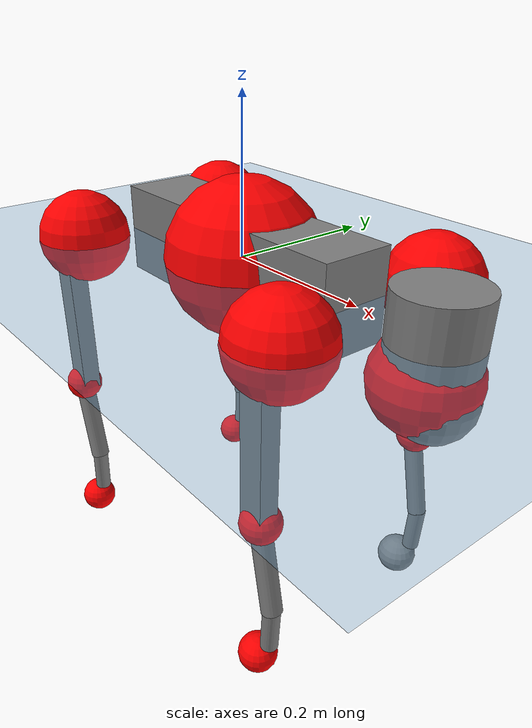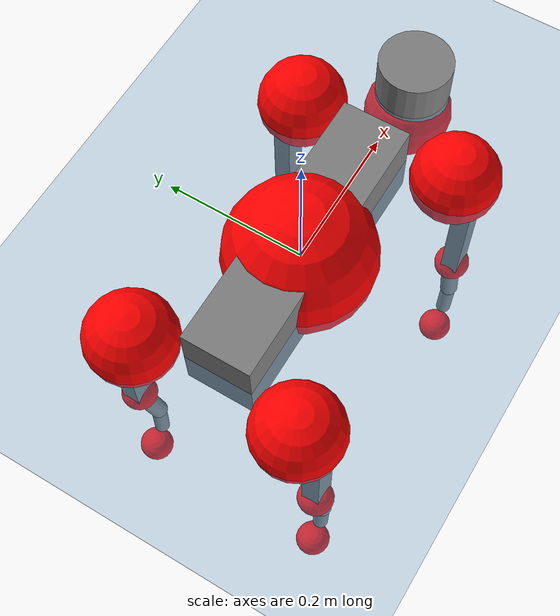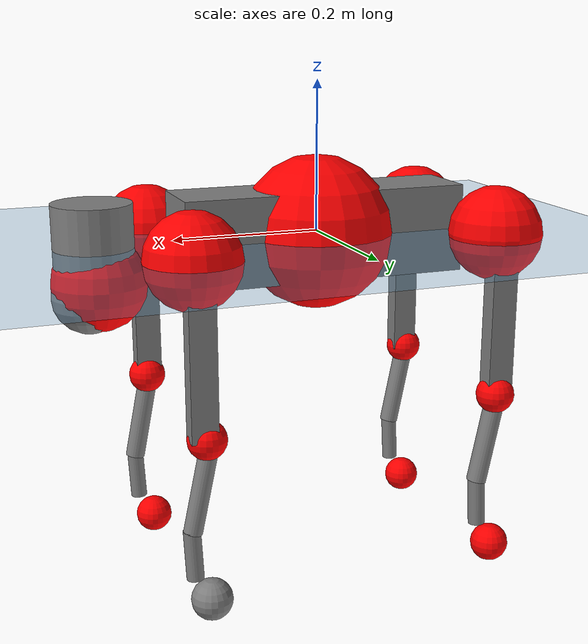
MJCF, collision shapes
<mujoco model="go2">
  <compiler angle="radian" assetdir="assets" balanceinertia="true" inertiafromgeom="false"/>

  <option timestep="0.005" density="1.2" viscosity="2e-05"/>

  <size nkey="1"/>

  <visual>
    <quality shadowsize="8192"/>
    <map shadowclip="0.5"/>
  </visual>

  <default>
    <default class="/">
      <geom contype="0" conaffinity="0" group="1" solref="-1000 -80"/>
      <site size="0.01 0.005 0.005" group="5"/>
      <general forcelimited="true" biastype="affine" gainprm="20" biasprm="0 -20 -0.5"/>
      <default class="go2">
        <joint armature="0.01" damping="0.01" frictionloss="0.2"/>
        <geom condim="1" margin="0.001"/>
        <default class="visual">
          <geom type="mesh" group="2"/>
        </default>
        <default class="collision">
          <geom group="3"/>
          <default class="foot">
            <geom size="0.022 0 0" condim="6" priority="1" friction="0.8 0.02 0.01" solimp="0.015 1 0.022"/>
          </default>
        </default>
        <default class="reward_collision_sphere">
          <geom group="5" rgba="1 0 0 1"/>
        </default>
      </default>
    </default>
  </default>

  <asset>
    <texture type="skybox" colorspace="auto" name="//unnamed_texture_0" builtin="gradient" rgb1="0.95 0.95 0.95" rgb2="0.95 0.95 0.95" width="100" height="600"/>
    <texture type="2d" colorspace="auto" name="texplane" builtin="checker" rgb1="0.345 0.575 0.748" rgb2="0.345 0.575 0.748" markrgb="1 1 1" width="512" height="512"/>
    <material name="MatPlane" class="/" texture="texplane" texuniform="true" texrepeat="2 2" specular="0.9"/>
    <material name="metal" class="/" rgba="0.9 0.95 0.95 1"/>
    <material name="black" class="/" rgba="0 0 0 1"/>
    <material name="white" class="/"/>
    <material name="gray" class="/" rgba="0.671705 0.692426 0.77427 1"/>
    <mesh name="base_0" class="/" file="base_0.obj"/>
    <mesh name="base_1" class="/" file="base_1.obj"/>
    <mesh name="base_2" class="/" file="base_2.obj"/>
    <mesh name="base_3" class="/" file="base_3.obj"/>
    <mesh name="base_4" class="/" file="base_4.obj"/>
    <mesh name="hip_0" class="/" file="hip_0.obj"/>
    <mesh name="hip_1" class="/" file="hip_1.obj"/>
    <mesh name="thigh_0" class="/" file="thigh_0.obj"/>
    <mesh name="thigh_1" class="/" file="thigh_1.obj"/>
    <mesh name="thigh_mirror_0" class="/" file="thigh_mirror_0.obj"/>
    <mesh name="thigh_mirror_1" class="/" file="thigh_mirror_1.obj"/>
    <mesh name="calf_0" class="/" file="calf_0.obj"/>
    <mesh name="calf_1" class="/" file="calf_1.obj"/>
    <mesh name="calf_mirror_0" class="/" file="calf_mirror_0.obj"/>
    <mesh name="calf_mirror_1" class="/" file="calf_mirror_1.obj"/>
    <mesh name="foot" class="/" file="foot.obj"/>
  </asset>

  <worldbody>
    <geom name="floor" class="/" size="100 100 0.125" type="plane" group="0" material="MatPlane"/>
    <light name="toplight_shadow" class="/" pos="0 0 5" dir="0.0990148 0.0990148 -0.990148" type="directional" ambient="0.04 0.04 0.04" diffuse="0.55 0.55 0.55" specular="0.12 0.12 0.12"/>
    <light name="toplight_fill" class="/" pos="0 0 5" dir="0.0990148 0.0990148 -0.990148" type="directional" castshadow="false" ambient="0.04 0.04 0.04" diffuse="0.3 0.3 0.3" specular="0.08 0.08 0.08"/>
    <body name="trunk" childclass="go2" pos="0.00157042 0.00232013 -0.000504685" quat="1 -0.00018332 3.86048e-05 0.000304965">
      <inertial pos="0.0218991 1.89224e-05 -0.00404375" quat="-0.00327095 0.706783 -0.0116482 0.707327" mass="7.91326" diaginertia="0.136303 0.102753 0.0275256"/>
      <joint name="//unnamed_joint_0" type="free" armature="0" damping="0" frictionloss="0"/>
      <geom name="//unnamed_geom_1" class="visual" material="black" mesh="base_0"/>
      <geom name="//unnamed_geom_2" class="visual" material="black" mesh="base_1"/>
      <geom name="//unnamed_geom_3" class="visual" material="black" mesh="base_2"/>
      <geom name="//unnamed_geom_4" class="visual" material="white" mesh="base_3"/>
      <geom name="//unnamed_geom_5" class="visual" material="gray" mesh="base_4"/>
      <geom name="trunk_1" class="collision" size="0.194741 0.0484005 0.0590123" type="box"/>
      <geom name="trunk_2" class="collision" size="0.0517652 0.0465887" pos="0.302117 0 0.0103613" type="cylinder"/>
      <geom name="trunk_3" class="collision" size="0.0486593" pos="0.310598 0 -0.0621677"/>
      <geom name="//unnamed_geom_9" class="reward_collision_sphere" size="0.10353"/>
      <geom name="//unnamed_geom_10" class="reward_collision_sphere" size="0.0621182" pos="0.296817 0 -0.0466258"/>
      <site name="imu" pos="-0.0268516 0.0317267 0.0353081" size="0.010353"/>
      <camera name="track" pos="0 -2.01945 0" quat="0.707107 0.707107 0 0" mode="trackcom"/>
      <camera name="ego_camera" pos="0.330739 0 0.0466258" quat="-0.5 -0.5 0.5 0.5"/>
      <body name="FL_hip" pos="0.204758 0.047584 -0.000264555" quat="0.999996 0.000871793 -0.00044003 -0.00278616">
        <inertial pos="-0.00613269 0.00376827 -0.00245124" quat="0.493453 0.499702 0.512422 0.494192" mass="0.705849" diaginertia="0.00111877 0.000583014 0.000542355"/>
        <joint name="FL_hip_joint" pos="0 0 0" axis="0.999978 -0.00198599 0.00630217" range="-1.13523 1.06505" armature="0.00918798" damping="0.0287313" frictionloss="0.182646"/>
        <geom name="//unnamed_geom_11" class="visual" material="metal" mesh="hip_0"/>
        <geom name="//unnamed_geom_12" class="visual" material="gray" mesh="hip_1"/>
        <geom name="//unnamed_geom_13" class="collision" size="0.047624 0.0207061" pos="0 0.0807778 0" quat="0.707107 0.707107 0 0" type="cylinder"/>
        <geom name="//unnamed_geom_14" class="reward_collision_sphere" size="0.0621182" pos="0 0.0706806 0"/>
        <body name="FL_thigh" pos="-0.000282631 0.0951473 -0.000759062" quat="1 -0.000218222 -0.000255107 0.000155475">
          <inertial pos="-0.00422352 -0.0179212 -0.0275025" quat="0.825217 0.0782519 -0.0191771 0.55904" mass="1.25716" diaginertia="0.00832249 0.0062083 0.00109691"/>
          <joint name="FL_thigh_joint" pos="0 0 0" axis="0.0175803 0.999761 0.0130187" stiffness="0.00229157" range="-1.58582 3.37265" armature="0.0102714" damping="0.0397038" frictionloss="0.205281"/>
          <geom name="//unnamed_geom_15" class="visual" material="metal" mesh="thigh_0"/>
          <geom name="//unnamed_geom_16" class="visual" material="gray" mesh="thigh_1"/>
          <geom name="//unnamed_geom_17" class="collision" size="0.11026 0.0126825 0.0176002" pos="0 0 -0.110348" quat="0.707107 0 0.707107 0" type="box"/>
          <body name="FL_calf" pos="-0.00663713 -0.00516413 -0.222221" quat="1 -0.000154835 -0.000434508 0.000185988">
            <inertial pos="0.0044605 -0.000624342 -0.147607" quat="0.712831 -0.000201534 -0.00490788 0.701318" mass="0.253292" diaginertia="0.00196456 0.00149189 6.30036e-05"/>
            <joint name="FL_calf_joint" pos="0 0 0" axis="-0.00579969 0.99997 0.00517845" stiffness="0.0328378" range="-2.74487 -0.763299" armature="0.0108039" damping="0" frictionloss="0.184432"/>
            <geom name="//unnamed_geom_18" class="visual" material="gray" mesh="calf_0"/>
            <geom name="//unnamed_geom_19" class="visual" material="black" mesh="calf_1"/>
            <geom name="FL_calf0" class="collision" size="0.0124236 0.0621182" pos="0.00848048 0 -0.0621677" quat="0.994493 0 -0.104807 0" type="cylinder"/>
            <geom name="//unnamed_geom_21" class="collision" size="0.0113883 0.0336474" pos="0.0212012 0 -0.153347" quat="0.999688 0 0.0249974 0" type="cylinder"/>
            <geom name="//unnamed_geom_22" class="visual" pos="0 0 -0.220695" quat="1 0 0 0" material="black" mesh="foot"/>
            <geom name="FL_foot" class="foot" size="0.0274812" pos="-0.00212012 0 -0.220695"/>
            <geom name="//unnamed_geom_24" class="reward_collision_sphere" size="0.0258826"/>
            <geom name="//unnamed_geom_25" class="reward_collision_sphere" size="0.0258826" pos="-0.00212012 0 -0.220695"/>
            <site name="FL_foot" class="foot" pos="-0.00212012 0 -0.220695" size="0.010353"/>
          </body>
        </body>
      </body>
      <body name="FR_hip" pos="0.205509 -0.0464066 -0.00496097" quat="1 0.000447522 0.000209472 0.000115266">
        <inertial pos="-0.00799456 -0.000734932 0.000638234" quat="0.496455 0.489893 0.515856 0.497423" mass="0.712079" diaginertia="0.00110441 0.000595846 0.000553653"/>
        <joint name="FR_hip_joint" pos="0 0 0" axis="0.999999 0.00163863 -6.90019e-05" stiffness="0.0154438" range="-1.08443 1.08001" armature="0.0104184" damping="0.00220042" frictionloss="0.226407"/>
        <geom name="//unnamed_geom_26" class="visual" pos="0 -2.30035e-10 -9.86666e-09" quat="4.63268e-05 1 0 0" material="metal" mesh="hip_0"/>
        <geom name="//unnamed_geom_27" class="visual" pos="0 -3.72914e-10 2.4404e-08" quat="4.63268e-05 1 0 0" material="gray" mesh="hip_1"/>
        <geom name="//unnamed_geom_28" class="collision" size="0.047624 0.0207061" pos="0 -0.0807778 0" quat="0.707107 0.707107 0 0" type="cylinder"/>
        <geom name="//unnamed_geom_29" class="reward_collision_sphere" size="0.0621182" pos="0 -0.0706806 0"/>
        <body name="FR_thigh" pos="0.000543631 -0.0964262 0.00270863" quat="0.999999 0.000474426 -0.000238994 -0.000911031">
          <inertial pos="-0.00455272 0.0229566 -0.0287227" quat="0.539347 -0.0042335 0.0606322 0.839888" mass="1.23107" diaginertia="0.00744811 0.00577571 0.000988828"/>
          <joint name="FR_thigh_joint" pos="0 0 0" axis="0.00197708 -0.999988 -0.00441091" range="-3.39308 1.5203" armature="0.0115796" damping="0.0190114" frictionloss="0.232205"/>
          <geom name="//unnamed_geom_30" class="visual" material="metal" mesh="thigh_mirror_0"/>
          <geom name="//unnamed_geom_31" class="visual" material="gray" mesh="thigh_mirror_1"/>
          <geom name="//unnamed_geom_32" class="collision" size="0.11026 0.0126825 0.0176002" pos="0 0 -0.110348" quat="0.707107 0 0.707107 0" type="box"/>
          <body name="FR_calf" pos="0.00173852 0.00194677 -0.220707" quat="1 -5.66153e-05 7.2354e-05 6.5179e-05">
            <inertial pos="0.00914111 0.000743652 -0.153164" quat="0.703429 -0.00411064 0.00230963 0.71075" mass="0.298505" diaginertia="0.00219654 0.00153617 7.23807e-05"/>
            <joint name="FR_calf_joint" pos="0 0 0" axis="0.0103974 -0.999944 0.00207315" range="0.83919 2.7132" armature="0.00924933" damping="0.00592313" frictionloss="0.206437"/>
            <geom name="//unnamed_geom_33" class="visual" material="gray" mesh="calf_mirror_0"/>
            <geom name="//unnamed_geom_34" class="visual" material="black" mesh="calf_mirror_1"/>
            <geom name="FR_calf0" class="collision" size="0.013459 0.0621182" pos="0.0106006 0 -0.0621677" quat="0.995004 0 -0.0998334 0" type="cylinder"/>
            <geom name="//unnamed_geom_36" class="collision" size="0.0113883 0.0336474" pos="0.0212012 0 -0.153347" quat="0.999688 0 0.0249974 0" type="cylinder"/>
            <geom name="//unnamed_geom_37" class="visual" pos="0 0 -0.220695" quat="1 0 0 0" material="black" mesh="foot"/>
            <geom name="FR_foot" class="foot" size="0.0197512" pos="-0.00212012 0 -0.220695"/>
            <geom name="//unnamed_geom_39" class="reward_collision_sphere" size="0.0258826"/>
            <geom name="//unnamed_geom_40" class="reward_collision_sphere" size="0.0258826" pos="-0.00212012 0 -0.220695"/>
            <site name="FR_foot" class="foot" pos="-0.00212012 0 -0.220695" size="0.010353"/>
          </body>
        </body>
      </body>
      <body name="RL_hip" pos="-0.207945 0.0458743 0.00510398" quat="1 -0.000120588 -5.28117e-05 -4.69686e-06">
        <inertial pos="0.00540092 0.000135907 0.00491915" quat="0.514048 0.492616 0.492432 0.500595" mass="0.692502" diaginertia="0.00110053 0.000616962 0.000569394"/>
        <joint name="RL_hip_joint" pos="0 0 0" axis="-0.999971 -0.00750816 -0.00132051" stiffness="0.0113226" range="-1.16608 0.964321" armature="0.0103839" damping="0.0152008" frictionloss="0.164007"/>
        <geom name="//unnamed_geom_41" class="visual" pos="-2.08483e-10 0 -4.08674e-08" quat="4.63268e-05 0 1 0" material="metal" mesh="hip_0"/>
        <geom name="//unnamed_geom_42" class="visual" pos="-3.37975e-10 0 -3.62436e-08" quat="4.63268e-05 0 1 0" material="gray" mesh="hip_1"/>
        <geom name="//unnamed_geom_43" class="collision" size="0.047624 0.0207061" pos="0 0.0807778 0" quat="0.707107 0.707107 0 0" type="cylinder"/>
        <geom name="//unnamed_geom_44" class="reward_collision_sphere" size="0.0621182" pos="0 0.0706806 0"/>
        <body name="RL_thigh" pos="0.000713678 0.0929802 0.00102352" quat="1 -2.23699e-05 -1.91648e-05 -3.1614e-05">
          <inertial pos="-0.000130249 -0.0204461 -0.0276299" quat="0.819956 0.0957957 -0.0141449 0.564176" mass="1.25902" diaginertia="0.00858389 0.00626797 0.00112388"/>
          <joint name="RL_thigh_joint" pos="0 0 0" axis="-0.0164272 0.999844 -0.00650996" range="-0.440807 4.49048" armature="0.0112715" damping="0.0106269" frictionloss="0.208433"/>
          <geom name="//unnamed_geom_45" class="visual" material="metal" mesh="thigh_0"/>
          <geom name="//unnamed_geom_46" class="visual" material="gray" mesh="thigh_1"/>
          <geom name="//unnamed_geom_47" class="collision" size="0.11026 0.0126825 0.0176002" pos="0 0 -0.110348" quat="0.707107 0 0.707107 0" type="box"/>
          <body name="RL_calf" pos="0.000959979 0.000807498 -0.218855" quat="1 0.000277687 -0.000177858 -0.000212672">
            <inertial pos="0.00655365 -0.000236052 -0.147572" quat="0.709029 0.0073751 -0.0161833 0.704955" mass="0.271717" diaginertia="0.0019944 0.00154787 6.14167e-05"/>
            <joint name="RL_calf_joint" pos="0 0 0" axis="4.31355e-05 1 -0.000102745" stiffness="0.0327802" range="-2.68556 -0.834003" armature="0.011246" damping="0.000494805" frictionloss="0.204706"/>
            <geom name="//unnamed_geom_48" class="visual" material="gray" mesh="calf_0"/>
            <geom name="//unnamed_geom_49" class="visual" material="black" mesh="calf_1"/>
            <geom name="RL_calf0" class="collision" size="0.013459 0.0621182" pos="0.0106006 0 -0.0621677" quat="0.995004 0 -0.0998334 0" type="cylinder"/>
            <geom name="//unnamed_geom_51" class="collision" size="0.0113883 0.0336474" pos="0.0212012 0 -0.153347" quat="0.999688 0 0.0249974 0" type="cylinder"/>
            <geom name="//unnamed_geom_52" class="visual" pos="0 0 -0.220695" quat="1 0 0 0" material="black" mesh="foot"/>
            <geom name="RL_foot" class="foot" size="0.0234395" pos="-0.00212012 0 -0.220695"/>
            <geom name="//unnamed_geom_54" class="reward_collision_sphere" size="0.0258826"/>
            <geom name="//unnamed_geom_55" class="reward_collision_sphere" size="0.0258826" pos="-0.00212012 0 -0.220695"/>
            <site name="RL_foot" class="foot" pos="-0.00212012 0 -0.220695" size="0.010353"/>
          </body>
        </body>
      </body>
      <body name="RR_hip" pos="-0.205375 -0.0491905 -0.000888136" quat="1 0.000831302 0.000201212 1.47495e-05">
        <inertial pos="0.00613693 -0.00578105 0.00145715" quat="0.499477 0.496935 0.498394 0.505154" mass="0.817319" diaginertia="0.00122994 0.000649943 0.000614892"/>
        <joint name="RR_hip_joint" pos="0 0 0" axis="-0.999981 0.00430268 0.00430643" range="-1.01706 1.10271" armature="0.0102517" damping="0.0319726" frictionloss="0.224771"/>
        <geom name="//unnamed_geom_56" class="visual" pos="2.0674e-10 -2.30035e-10 -3.10007e-08" quat="2.14617e-09 4.63268e-05 4.63268e-05 -1" material="metal" mesh="hip_0"/>
        <geom name="//unnamed_geom_57" class="visual" pos="3.42285e-10 -3.72914e-10 -6.06476e-08" quat="2.14617e-09 4.63268e-05 4.63268e-05 -1" material="gray" mesh="hip_1"/>
        <geom name="//unnamed_geom_58" class="collision" size="0.047624 0.0207061" pos="0 -0.0807778 0" quat="0.707107 0.707107 0 0" type="cylinder"/>
        <geom name="//unnamed_geom_59" class="reward_collision_sphere" size="0.0621182" pos="0 -0.0706806 0"/>
        <body name="RR_thigh" pos="0.00309352 -0.0976657 -0.00497072" quat="1 0.000550573 -0.000569358 0.000216024">
          <inertial pos="-0.00329233 0.020909 -0.0339945" quat="0.551216 -0.0180304 0.0845147 0.829875" mass="1.37239" diaginertia="0.00835302 0.00620213 0.00105031"/>
          <joint name="RR_thigh_joint" pos="0 0 0" axis="0.00555423 -0.999983 0.00161216" range="-4.44085 0.44223" armature="0.0105966" damping="0.0180775" frictionloss="0.238239"/>
          <geom name="//unnamed_geom_60" class="visual" material="metal" mesh="thigh_mirror_0"/>
          <geom name="//unnamed_geom_61" class="visual" material="gray" mesh="thigh_mirror_1"/>
          <geom name="//unnamed_geom_62" class="collision" size="0.11026 0.0126825 0.0176002" pos="0 0 -0.110348" quat="0.707107 0 0.707107 0" type="box"/>
          <body name="RR_calf" pos="-0.00511155 -0.00204538 -0.219236" quat="1 -0.000441686 0.000780266 -0.000411059">
            <inertial pos="0.00840084 0.00041087 -0.146067" quat="0.70767 0.00158484 0.00977412 0.706474" mass="0.278342" diaginertia="0.00196017 0.00152212 6.54529e-05"/>
            <joint name="RR_calf_joint" pos="0 0 0" axis="-0.00162442 -0.99996 -0.00874091" stiffness="0.011505" range="0.815807 2.71981" armature="0.00994909" damping="0.0398939" frictionloss="0.206354"/>
            <geom name="//unnamed_geom_63" class="visual" material="gray" mesh="calf_mirror_0"/>
            <geom name="//unnamed_geom_64" class="visual" material="black" mesh="calf_mirror_1"/>
            <geom name="RR_calf0" class="collision" size="0.013459 0.0621182" pos="0.0106006 0 -0.0621677" quat="0.995004 0 -0.0998334 0" type="cylinder"/>
            <geom name="//unnamed_geom_66" class="collision" size="0.0113883 0.0336474" pos="0.0212012 0 -0.153347" quat="0.999688 0 0.0249974 0" type="cylinder"/>
            <geom name="//unnamed_geom_67" class="visual" pos="0 0 -0.220695" quat="1 0 0 0" material="black" mesh="foot"/>
            <geom name="RR_foot" class="foot" size="0.0186194" pos="-0.00212012 0 -0.220695"/>
            <geom name="//unnamed_geom_69" class="reward_collision_sphere" size="0.0258826"/>
            <geom name="//unnamed_geom_70" class="reward_collision_sphere" size="0.0258826" pos="-0.00212012 0 -0.220695"/>
            <site name="RR_foot" class="foot" pos="-0.00212012 0 -0.220695" size="0.010353"/>
          </body>
        </body>
      </body>
    </body>
  </worldbody>

  <contact>
    <pair class="/" geom1="floor" geom2="FL_foot" name="//unnamed_contact_0"/>
    <pair class="/" geom1="floor" geom2="FR_foot" name="//unnamed_contact_1"/>
    <pair class="/" geom1="floor" geom2="RL_foot" name="//unnamed_contact_2"/>
    <pair class="/" geom1="floor" geom2="RR_foot" name="//unnamed_contact_3"/>
  </contact>

  <actuator>
    <general name="FL_hip" class="/" joint="FL_hip_joint" forcerange="-26.7006 26.7006" gainprm="19.8714" biasprm="0 -19.8714 -0.47167"/>
    <general name="FL_thigh" class="/" joint="FL_thigh_joint" forcerange="-21.4528 21.4528" gainprm="19.8714" biasprm="0 -19.8714 -0.47167"/>
    <general name="FL_calf" class="/" joint="FL_calf_joint" forcerange="-54.5899 54.5899" gainprm="19.8714" biasprm="0 -19.8714 -0.47167"/>
    <general name="FR_hip" class="/" joint="FR_hip_joint" forcerange="-26.2498 26.2498" gainprm="19.8714" biasprm="0 -19.8714 -0.47167"/>
    <general name="FR_thigh" class="/" joint="FR_thigh_joint" forcerange="-24.1344 24.1344" gainprm="19.8714" biasprm="0 -19.8714 -0.47167"/>
    <general name="FR_calf" class="/" joint="FR_calf_joint" forcerange="-34.5871 34.5871" gainprm="19.8714" biasprm="0 -19.8714 -0.47167"/>
    <general name="RL_hip" class="/" joint="RL_hip_joint" forcerange="-20.2932 20.2932" gainprm="19.8714" biasprm="0 -19.8714 -0.47167"/>
    <general name="RL_thigh" class="/" joint="RL_thigh_joint" forcerange="-25.1802 25.1802" gainprm="19.8714" biasprm="0 -19.8714 -0.47167"/>
    <general name="RL_calf" class="/" joint="RL_calf_joint" forcerange="-49.1394 49.1394" gainprm="19.8714" biasprm="0 -19.8714 -0.47167"/>
    <general name="RR_hip" class="/" joint="RR_hip_joint" forcerange="-23.7118 23.7118" gainprm="19.8714" biasprm="0 -19.8714 -0.47167"/>
    <general name="RR_thigh" class="/" joint="RR_thigh_joint" forcerange="-30.0899 30.0899" gainprm="19.8714" biasprm="0 -19.8714 -0.47167"/>
    <general name="RR_calf" class="/" joint="RR_calf_joint" forcerange="-51.6928 51.6928" gainprm="19.8714" biasprm="0 -19.8714 -0.47167"/>
  </actuator>

  <sensor>
    <gyro site="imu" name="imu_angular_velocity"/>
    <velocimeter site="imu" name="imu_linear_velocity"/>
    <framelinvel objtype="site" objname="FL_foot" name="FL_foot_global_linear_velocity"/>
    <framelinvel objtype="site" objname="FR_foot" name="FR_foot_global_linear_velocity"/>
    <framelinvel objtype="site" objname="RL_foot" name="RL_foot_global_linear_velocity"/>
    <framelinvel objtype="site" objname="RR_foot" name="RR_foot_global_linear_velocity"/>
  </sensor>

  <keyframe>
    <key name="home" qpos="0 0 0.325 1 0 0 0 0.1 0.8 -1.5 -0.1 -0.8 1.5 -0.1 0.8 -1.5 0.1 -0.8 1.5"/>
  </keyframe>
</mujoco>
